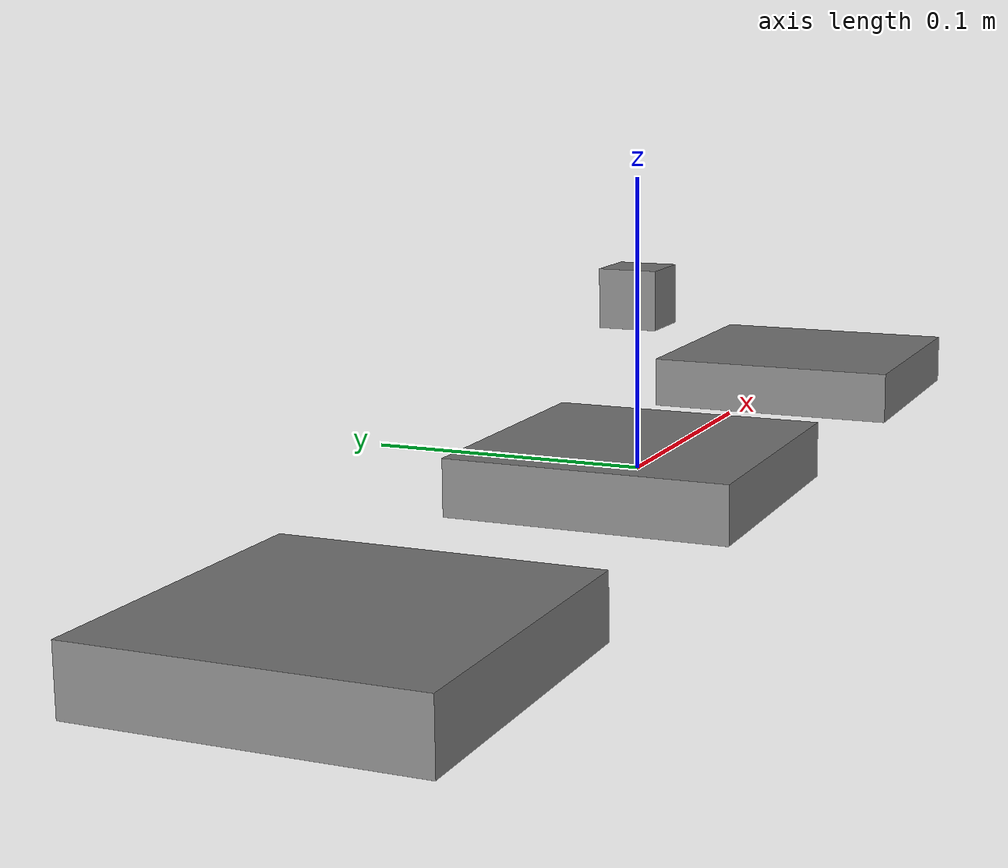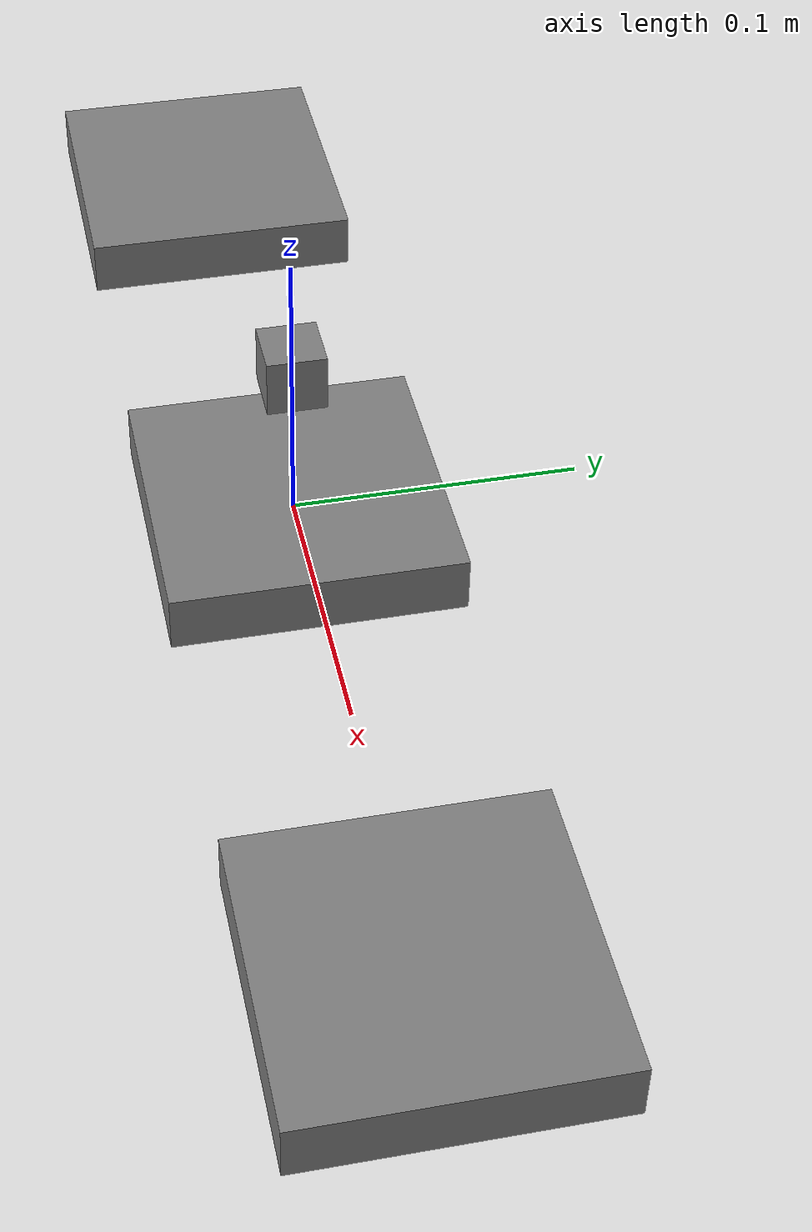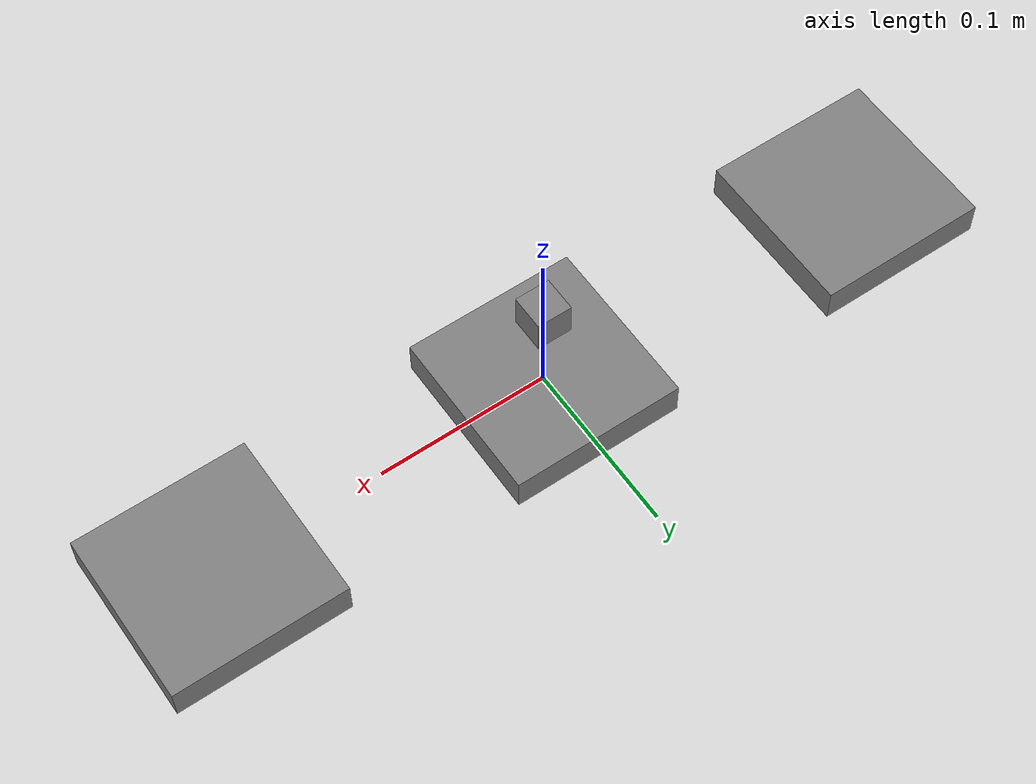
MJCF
<mujoco>
  <option timestep="0.001" gravity="0 0 -9.81"/>
  <worldbody>
    <geom name="laboratory_balance_weighing_pan" type="box" size="0.05 0.05 0.01" pos="-0.2 0 0"/>
    <geom name="laboratory_balance_weighing_holder_0" type="box" size="0.05 0.05 0.01"/>
    <geom name="laboratory_balance_housing" type="box" size="0.05 0.05 0.01" pos="0.2 0 0"/>
    <body name="supported_sample" pos="0 0 0.06">
      <freejoint/>
      <geom type="box" size="0.01 0.01 0.01" mass="0.017"/>
    </body>
  </worldbody>
</mujoco>
